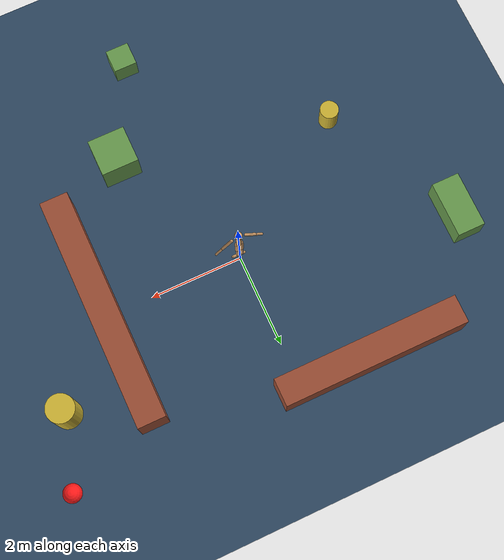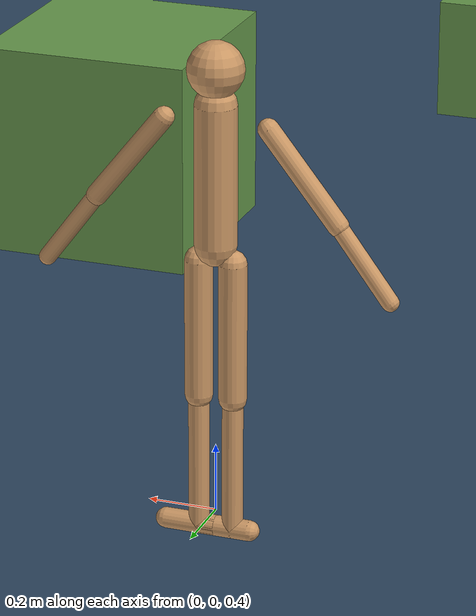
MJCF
<mujoco model="humanoid_obstacle_arena">
  <option timestep="0.005" gravity="0 0 -9.81"/>

  <default>
    <joint damping="0.5" armature="0.1"/>
    <geom friction="1.0 0.5 0.5" condim="3" contype="1" conaffinity="1"/>
    <motor ctrlrange="-1 1" ctrllimited="true"/>
  </default>

  <asset>
    <texture type="skybox" builtin="gradient" rgb1="0.3 0.5 0.7" rgb2="0.1 0.2 0.4" width="512" height="512"/>
    <texture name="grid_tex" type="2d" builtin="checker" rgb1="0.2 0.3 0.4" rgb2="0.15 0.25 0.35" width="512" height="512" mark="none" markrgb="0.4 0.6 0.8"/>
    <material name="grid_mat" texture="grid_tex" texrepeat="12 12" reflectance="0.2"/>
    <material name="wall_mat" rgba="0.6 0.3 0.2 1" reflectance="0.1"/>
    <material name="cylinder_mat" rgba="0.8 0.7 0.2 1" reflectance="0.3"/>
    <material name="block_mat" rgba="0.4 0.6 0.3 1" reflectance="0.1"/>
    <material name="target_mat" rgba="1 0.1 0.1 1" reflectance="0.5"/>
    <material name="body_mat" rgba="0.8 0.6 0.4 1"/>
  </asset>

  <worldbody>
    <!-- Ground plane — size 12×12 to accommodate waypoint range [-6, 6] -->
    <geom name="ground" type="plane" size="12 12 0.1" material="grid_mat" contype="1" conaffinity="1"/>
    <light directional="true" pos="0 0 5" dir="0 0 -1" diffuse="0.8 0.8 0.8" specular="0.3 0.3 0.3"/>

    <!-- ─── Static Obstacles (no joints — fixed to worldbody) ─── -->

    <!-- Wall 1: Tall wall forcing detour -->
    <body name="wall_front" pos="3 0 0.5">
      <geom name="wall_front_geom" type="box" size="0.3 2.5 0.5" material="wall_mat" mass="1000" contype="1" conaffinity="3"/>
    </body>

    <!-- Wall 2: Side wall creating corridor -->
    <body name="wall_side" pos="-1.5 3 0.4">
      <geom name="wall_side_geom" type="box" size="2 0.3 0.4" material="wall_mat" mass="1000" contype="1" conaffinity="3"/>
    </body>

    <!-- Cylinder 1: Medium cylinder obstacle -->
    <body name="cylinder_big" pos="4.5 1.5 0.5">
      <geom name="cylinder_big_geom" type="cylinder" size="0.3 0.5" material="cylinder_mat" mass="1000" contype="1" conaffinity="3"/>
    </body>

    <!-- Cylinder 2: Small cylinder obstacle -->
    <body name="cylinder_small" pos="-3 -2 0.3">
      <geom name="cylinder_small_geom" type="cylinder" size="0.2 0.3" material="cylinder_mat" mass="1000" contype="1" conaffinity="3"/>
    </body>

    <!-- Block 1: Medium block obstacle -->
    <body name="block_large" pos="1.5 -3 0.4">
      <geom name="block_large_geom" type="box" size="0.4 0.4 0.4" material="block_mat" mass="1000" contype="1" conaffinity="3"/>
    </body>

    <!-- Block 2: Flat block obstacle -->
    <body name="block_small" pos="-4.5 1 0.3">
      <geom name="block_small_geom" type="box" size="0.3 0.6 0.3" material="block_mat" mass="1000" contype="1" conaffinity="3"/>
    </body>

    <!-- Block 3: Additional small obstacle for variety -->
    <body name="block_extra" pos="0.5 -5 0.25">
      <geom name="block_extra_geom" type="box" size="0.25 0.25 0.25" material="block_mat" mass="1000" contype="1" conaffinity="3"/>
    </body>

    <!-- ─── Target Marker ─── -->
    <body name="target_marker" pos="5 3 0.2">
      <geom name="target_geom" type="sphere" size="0.2" material="target_mat" contype="0" conaffinity="0"/>
    </body>

    <!-- ─── Simplified Stick-figure Humanoid ─── -->
    <body name="torso" pos="0 0 1.2">
      <joint name="root" type="free" damping="0.5"/>
      <geom name="torso_geom" type="capsule" size="0.06" fromto="0 0 0 0 0 0.4" material="body_mat" mass="5"/>
      <site name="torso_top" pos="0 0 0.4" size="0.01"/>

      <!-- Head -->
      <body name="head" pos="0 0 0.5">
        <joint name="head_joint" type="ball" damping="1" armature="0.2"/>
        <geom name="head_geom" type="sphere" size="0.08" material="body_mat" mass="1"/>
      </body>

      <!-- Upper legs -->
      <body name="upper_leg_l" pos="0.05 0 -0.05">
        <joint name="hip_l" type="ball" damping="1" armature="0.2"/>
        <geom name="upper_leg_l_geom" type="capsule" size="0.04" fromto="0 0 0 0 0 -0.4" material="body_mat" mass="2"/>

        <!-- Lower legs -->
        <body name="lower_leg_l" pos="0 0 -0.4">
          <joint name="knee_l" type="hinge" axis="0 1 0" damping="1" armature="0.2" range="-2.0 0.01"/>
          <geom name="lower_leg_l_geom" type="capsule" size="0.03" fromto="0 0 0 0 0 -0.4" material="body_mat" mass="1"/>

          <!-- Feet -->
          <body name="foot_l" pos="0 0 -0.4">
            <joint name="ankle_l" type="hinge" axis="0 1 0" damping="0.5" armature="0.1" range="-0.5 0.5"/>
            <geom name="foot_l_geom" type="capsule" size="0.03 0.1" fromto="-0.05 0 0 0.1 0 0" material="body_mat" mass="0.5"/>
            <site name="foot_l_site" pos="0 0 0" size="0.01"/>
          </body>
        </body>
      </body>

      <body name="upper_leg_r" pos="-0.05 0 -0.05">
        <joint name="hip_r" type="ball" damping="1" armature="0.2"/>
        <geom name="upper_leg_r_geom" type="capsule" size="0.04" fromto="0 0 0 0 0 -0.4" material="body_mat" mass="2"/>

        <body name="lower_leg_r" pos="0 0 -0.4">
          <joint name="knee_r" type="hinge" axis="0 1 0" damping="1" armature="0.2" range="-2.0 0.01"/>
          <geom name="lower_leg_r_geom" type="capsule" size="0.03" fromto="0 0 0 0 0 -0.4" material="body_mat" mass="1"/>

          <body name="foot_r" pos="0 0 -0.4">
            <joint name="ankle_r" type="hinge" axis="0 1 0" damping="0.5" armature="0.1" range="-0.5 0.5"/>
            <geom name="foot_r_geom" type="capsule" size="0.03 0.1" fromto="-0.05 0 0 0.1 0 0" material="body_mat" mass="0.5"/>
            <site name="foot_r_site" pos="0 0 0" size="0.01"/>
          </body>
        </body>
      </body>

      <!-- Upper arms -->
      <body name="upper_arm_l" pos="0.15 0 0.35">
        <joint name="shoulder_l" type="ball" damping="1" armature="0.1"/>
        <geom name="upper_arm_l_geom" type="capsule" size="0.03" fromto="0 0 0 0.2 0 -0.25" material="body_mat" mass="1"/>

        <body name="lower_arm_l" pos="0.2 0 -0.25">
          <joint name="elbow_l" type="hinge" axis="0 1 0" damping="0.5" armature="0.1" range="-2.5 0"/>
          <geom name="lower_arm_l_geom" type="capsule" size="0.025" fromto="0 0 0 0.15 0 -0.2" material="body_mat" mass="0.5"/>
        </body>
      </body>

      <body name="upper_arm_r" pos="-0.15 0 0.35">
        <joint name="shoulder_r" type="ball" damping="1" armature="0.1"/>
        <geom name="upper_arm_r_geom" type="capsule" size="0.03" fromto="0 0 0 -0.2 0 -0.25" material="body_mat" mass="1"/>

        <body name="lower_arm_r" pos="-0.2 0 -0.25">
          <joint name="elbow_r" type="hinge" axis="0 1 0" damping="0.5" armature="0.1" range="-2.5 0"/>
          <geom name="lower_arm_r_geom" type="capsule" size="0.025" fromto="0 0 0 -0.15 0 -0.2" material="body_mat" mass="0.5"/>
        </body>
      </body>
    </body>
  </worldbody>

  <!-- Actuators for the stick-figure humanoid -->
  <!-- In MuJoCo 3.x, gear is 6-valued; gain scaling moved to gainprm on general actuators -->
  <actuator>
    <!-- Root (free joint) has no actuator — controlled by qfrc_applied -->
    <!-- Head (ball joint, 3 DOF, gain=0.1) -->
    <general name="head_x" joint="head_joint" gear="0 0 0 1 0 0" gainprm="0.1" ctrlrange="-1 1"/>
    <general name="head_y" joint="head_joint" gear="0 0 0 0 1 0" gainprm="0.1" ctrlrange="-1 1"/>
    <general name="head_z" joint="head_joint" gear="0 0 0 0 0 1" gainprm="0.1" ctrlrange="-1 1"/>
    <!-- Left hip (ball joint, 3 DOF, gain=1) -->
    <general name="hip_l_x" joint="hip_l" gear="0 0 0 1 0 0" gainprm="1" ctrlrange="-1 1"/>
    <general name="hip_l_y" joint="hip_l" gear="0 0 0 0 1 0" gainprm="1" ctrlrange="-1 1"/>
    <general name="hip_l_z" joint="hip_l" gear="0 0 0 0 0 1" gainprm="1" ctrlrange="-1 1"/>
    <!-- Right hip (ball joint, 3 DOF, gain=1) -->
    <general name="hip_r_x" joint="hip_r" gear="0 0 0 1 0 0" gainprm="1" ctrlrange="-1 1"/>
    <general name="hip_r_y" joint="hip_r" gear="0 0 0 0 1 0" gainprm="1" ctrlrange="-1 1"/>
    <general name="hip_r_z" joint="hip_r" gear="0 0 0 0 0 1" gainprm="1" ctrlrange="-1 1"/>
    <!-- Left knee (hinge, gain=1) -->
    <motor name="knee_l" joint="knee_l" gear="1" ctrlrange="-1 1"/>
    <!-- Right knee (hinge, gain=1) -->
    <motor name="knee_r" joint="knee_r" gear="1" ctrlrange="-1 1"/>
    <!-- Left ankle (hinge, gain=0.5) -->
    <general name="ankle_l" joint="ankle_l" gear="0 0 0 0 1 0" gainprm="0.5" ctrlrange="-1 1"/>
    <!-- Right ankle (hinge, gain=0.5) -->
    <general name="ankle_r" joint="ankle_r" gear="0 0 0 0 1 0" gainprm="0.5" ctrlrange="-1 1"/>
    <!-- Left shoulder (ball joint, 3 DOF, gain=0.5) -->
    <general name="shoulder_l_x" joint="shoulder_l" gear="0 0 0 1 0 0" gainprm="0.5" ctrlrange="-1 1"/>
    <general name="shoulder_l_y" joint="shoulder_l" gear="0 0 0 0 1 0" gainprm="0.5" ctrlrange="-1 1"/>
    <general name="shoulder_l_z" joint="shoulder_l" gear="0 0 0 0 0 1" gainprm="0.5" ctrlrange="-1 1"/>
    <!-- Right shoulder (ball joint, 3 DOF, gain=0.5) -->
    <general name="shoulder_r_x" joint="shoulder_r" gear="0 0 0 1 0 0" gainprm="0.5" ctrlrange="-1 1"/>
    <general name="shoulder_r_y" joint="shoulder_r" gear="0 0 0 0 1 0" gainprm="0.5" ctrlrange="-1 1"/>
    <general name="shoulder_r_z" joint="shoulder_r" gear="0 0 0 0 0 1" gainprm="0.5" ctrlrange="-1 1"/>
    <!-- Left elbow (hinge, gain=0.3) -->
    <general name="elbow_l" joint="elbow_l" gear="0 0 0 0 1 0" gainprm="0.3" ctrlrange="-1 1"/>
    <!-- Right elbow (hinge, gain=0.3) -->
    <general name="elbow_r" joint="elbow_r" gear="0 0 0 0 1 0" gainprm="0.3" ctrlrange="-1 1"/>
  </actuator>

  <!-- Contact exclusions: prevent self-collision between adjacent body parts -->
  <contact>
    <exclude body1="torso" body2="upper_leg_l"/>
    <exclude body1="torso" body2="upper_leg_r"/>
    <exclude body1="torso" body2="upper_arm_l"/>
    <exclude body1="torso" body2="upper_arm_r"/>
    <exclude body1="upper_leg_l" body2="lower_leg_l"/>
    <exclude body1="upper_leg_r" body2="lower_leg_r"/>
    <exclude body1="lower_leg_l" body2="foot_l"/>
    <exclude body1="lower_leg_r" body2="foot_r"/>
    <exclude body1="upper_arm_l" body2="lower_arm_l"/>
    <exclude body1="upper_arm_r" body2="lower_arm_r"/>
    <exclude body1="torso" body2="head"/>
  </contact>
</mujoco>
